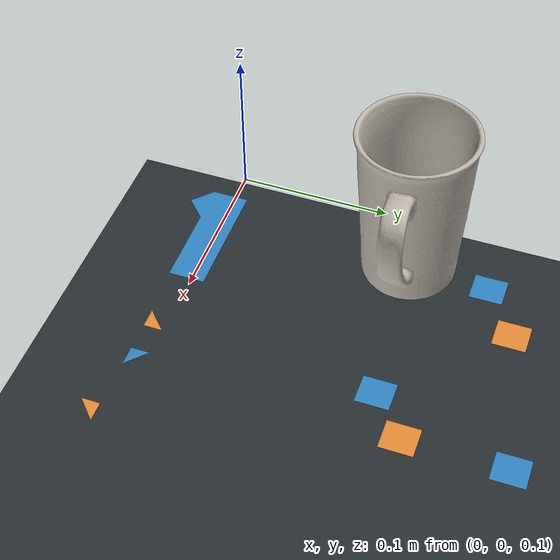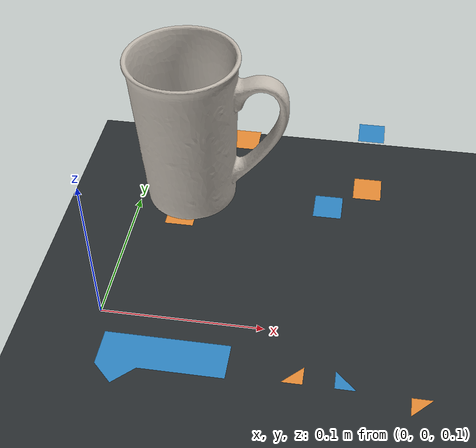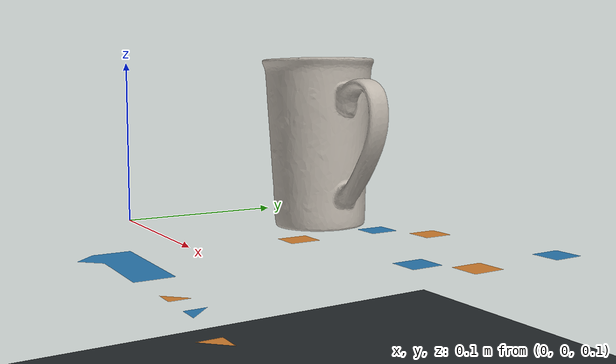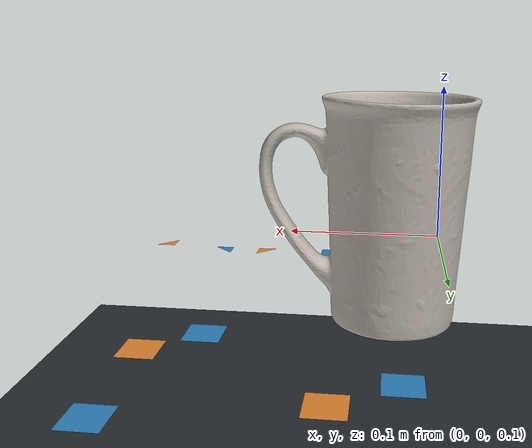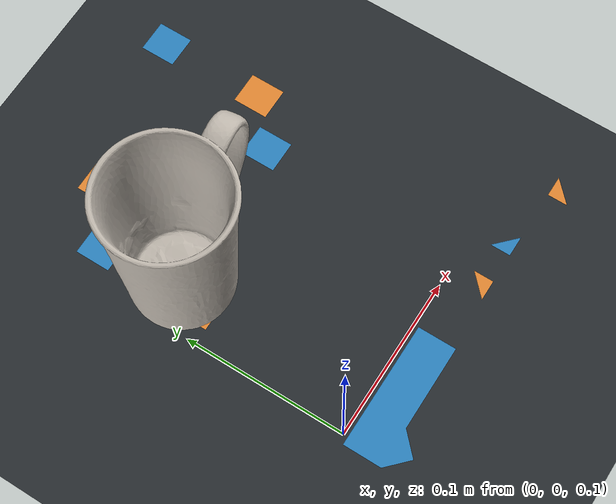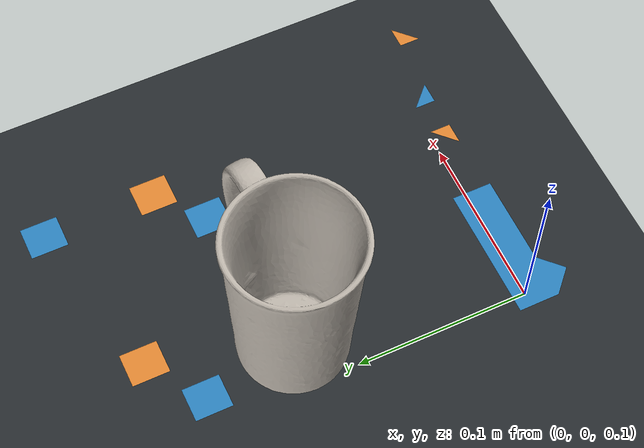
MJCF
<?xml version="1.0"?>
<mujoco model="three_finger_gripper_b_sdas">
  <compiler angle="radian" meshdir="" autolimits="true"/>
  <option timestep="0.002000000" integrator="RK4" gravity="0.0 0.0 0.0"/>
  <visual>
    <global offwidth="1280" offheight="900"/>
    <quality offsamples="8" shadowsize="4096"/>
    <headlight ambient="0.24 0.24 0.26" diffuse="0.65 0.65 0.62" specular="0.25 0.25 0.25"/>
    <rgba haze="0.86 0.88 0.90 1"/>
  </visual>
  <asset>
    <material name="base_mat" rgba="0.16 0.18 0.19 1"/>
    <material name="hand_mat" rgba="0.18 0.52 0.76 1" specular="0.25" shininess="0.25"/>
    <material name="hand_alt" rgba="0.90 0.54 0.20 1" specular="0.25" shininess="0.25"/>
    <material name="mat_gui_scanned_mug" rgba="0.8 0.72 0.58 1" specular="0.25" shininess="0.25"/>
    <texture type="2d" name="gui_scanned_mug__texture" file="E:/SGLab/cable-driven/synergy_hand_sim/assets/mujoco_scanned_objects/ACE_Coffee_Mug_Kristen_16_oz_cup/texture.png" />
    <material name="gui_scanned_mug__material_0" texture="gui_scanned_mug__texture" specular="0.5" shininess="0.5" />
    <mesh name="gui_scanned_mug__model" file="E:/SGLab/cable-driven/synergy_hand_sim/assets/mujoco_scanned_objects/ACE_Coffee_Mug_Kristen_16_oz_cup/model.obj" scale="0.85 0.85 0.85" />
    <mesh name="gui_scanned_mug__model_collision_0" file="E:/SGLab/cable-driven/synergy_hand_sim/assets/mujoco_scanned_objects/ACE_Coffee_Mug_Kristen_16_oz_cup/model_collision_0.obj" scale="0.85 0.85 0.85" />
    <mesh name="gui_scanned_mug__model_collision_1" file="E:/SGLab/cable-driven/synergy_hand_sim/assets/mujoco_scanned_objects/ACE_Coffee_Mug_Kristen_16_oz_cup/model_collision_1.obj" scale="0.85 0.85 0.85" />
    <mesh name="gui_scanned_mug__model_collision_2" file="E:/SGLab/cable-driven/synergy_hand_sim/assets/mujoco_scanned_objects/ACE_Coffee_Mug_Kristen_16_oz_cup/model_collision_2.obj" scale="0.85 0.85 0.85" />
    <mesh name="gui_scanned_mug__model_collision_3" file="E:/SGLab/cable-driven/synergy_hand_sim/assets/mujoco_scanned_objects/ACE_Coffee_Mug_Kristen_16_oz_cup/model_collision_3.obj" scale="0.85 0.85 0.85" />
    <mesh name="gui_scanned_mug__model_collision_4" file="E:/SGLab/cable-driven/synergy_hand_sim/assets/mujoco_scanned_objects/ACE_Coffee_Mug_Kristen_16_oz_cup/model_collision_4.obj" scale="0.85 0.85 0.85" />
    <mesh name="gui_scanned_mug__model_collision_5" file="E:/SGLab/cable-driven/synergy_hand_sim/assets/mujoco_scanned_objects/ACE_Coffee_Mug_Kristen_16_oz_cup/model_collision_5.obj" scale="0.85 0.85 0.85" />
    <mesh name="gui_scanned_mug__model_collision_6" file="E:/SGLab/cable-driven/synergy_hand_sim/assets/mujoco_scanned_objects/ACE_Coffee_Mug_Kristen_16_oz_cup/model_collision_6.obj" scale="0.85 0.85 0.85" />
    <mesh name="gui_scanned_mug__model_collision_7" file="E:/SGLab/cable-driven/synergy_hand_sim/assets/mujoco_scanned_objects/ACE_Coffee_Mug_Kristen_16_oz_cup/model_collision_7.obj" scale="0.85 0.85 0.85" />
    <mesh name="gui_scanned_mug__model_collision_8" file="E:/SGLab/cable-driven/synergy_hand_sim/assets/mujoco_scanned_objects/ACE_Coffee_Mug_Kristen_16_oz_cup/model_collision_8.obj" scale="0.85 0.85 0.85" />
    <mesh name="gui_scanned_mug__model_collision_9" file="E:/SGLab/cable-driven/synergy_hand_sim/assets/mujoco_scanned_objects/ACE_Coffee_Mug_Kristen_16_oz_cup/model_collision_9.obj" scale="0.85 0.85 0.85" />
    <mesh name="gui_scanned_mug__model_collision_10" file="E:/SGLab/cable-driven/synergy_hand_sim/assets/mujoco_scanned_objects/ACE_Coffee_Mug_Kristen_16_oz_cup/model_collision_10.obj" scale="0.85 0.85 0.85" />
    <mesh name="gui_scanned_mug__model_collision_11" file="E:/SGLab/cable-driven/synergy_hand_sim/assets/mujoco_scanned_objects/ACE_Coffee_Mug_Kristen_16_oz_cup/model_collision_11.obj" scale="0.85 0.85 0.85" />
    <mesh name="gui_scanned_mug__model_collision_12" file="E:/SGLab/cable-driven/synergy_hand_sim/assets/mujoco_scanned_objects/ACE_Coffee_Mug_Kristen_16_oz_cup/model_collision_12.obj" scale="0.85 0.85 0.85" />
    <mesh name="gui_scanned_mug__model_collision_13" file="E:/SGLab/cable-driven/synergy_hand_sim/assets/mujoco_scanned_objects/ACE_Coffee_Mug_Kristen_16_oz_cup/model_collision_13.obj" scale="0.85 0.85 0.85" />
    <mesh name="gui_scanned_mug__model_collision_14" file="E:/SGLab/cable-driven/synergy_hand_sim/assets/mujoco_scanned_objects/ACE_Coffee_Mug_Kristen_16_oz_cup/model_collision_14.obj" scale="0.85 0.85 0.85" />
    <mesh name="gui_scanned_mug__model_collision_15" file="E:/SGLab/cable-driven/synergy_hand_sim/assets/mujoco_scanned_objects/ACE_Coffee_Mug_Kristen_16_oz_cup/model_collision_15.obj" scale="0.85 0.85 0.85" />
    <mesh name="gui_scanned_mug__model_collision_16" file="E:/SGLab/cable-driven/synergy_hand_sim/assets/mujoco_scanned_objects/ACE_Coffee_Mug_Kristen_16_oz_cup/model_collision_16.obj" scale="0.85 0.85 0.85" />
    <mesh name="gui_scanned_mug__model_collision_17" file="E:/SGLab/cable-driven/synergy_hand_sim/assets/mujoco_scanned_objects/ACE_Coffee_Mug_Kristen_16_oz_cup/model_collision_17.obj" scale="0.85 0.85 0.85" />
    <mesh name="gui_scanned_mug__model_collision_18" file="E:/SGLab/cable-driven/synergy_hand_sim/assets/mujoco_scanned_objects/ACE_Coffee_Mug_Kristen_16_oz_cup/model_collision_18.obj" scale="0.85 0.85 0.85" />
    <mesh name="gui_scanned_mug__model_collision_19" file="E:/SGLab/cable-driven/synergy_hand_sim/assets/mujoco_scanned_objects/ACE_Coffee_Mug_Kristen_16_oz_cup/model_collision_19.obj" scale="0.85 0.85 0.85" />
    <mesh name="gui_scanned_mug__model_collision_20" file="E:/SGLab/cable-driven/synergy_hand_sim/assets/mujoco_scanned_objects/ACE_Coffee_Mug_Kristen_16_oz_cup/model_collision_20.obj" scale="0.85 0.85 0.85" />
    <mesh name="gui_scanned_mug__model_collision_21" file="E:/SGLab/cable-driven/synergy_hand_sim/assets/mujoco_scanned_objects/ACE_Coffee_Mug_Kristen_16_oz_cup/model_collision_21.obj" scale="0.85 0.85 0.85" />
    <mesh name="gui_scanned_mug__model_collision_22" file="E:/SGLab/cable-driven/synergy_hand_sim/assets/mujoco_scanned_objects/ACE_Coffee_Mug_Kristen_16_oz_cup/model_collision_22.obj" scale="0.85 0.85 0.85" />
    <mesh name="gui_scanned_mug__model_collision_23" file="E:/SGLab/cable-driven/synergy_hand_sim/assets/mujoco_scanned_objects/ACE_Coffee_Mug_Kristen_16_oz_cup/model_collision_23.obj" scale="0.85 0.85 0.85" />
    <mesh name="gui_scanned_mug__model_collision_24" file="E:/SGLab/cable-driven/synergy_hand_sim/assets/mujoco_scanned_objects/ACE_Coffee_Mug_Kristen_16_oz_cup/model_collision_24.obj" scale="0.85 0.85 0.85" />
    <mesh name="gui_scanned_mug__model_collision_25" file="E:/SGLab/cable-driven/synergy_hand_sim/assets/mujoco_scanned_objects/ACE_Coffee_Mug_Kristen_16_oz_cup/model_collision_25.obj" scale="0.85 0.85 0.85" />
    <mesh name="gui_scanned_mug__model_collision_26" file="E:/SGLab/cable-driven/synergy_hand_sim/assets/mujoco_scanned_objects/ACE_Coffee_Mug_Kristen_16_oz_cup/model_collision_26.obj" scale="0.85 0.85 0.85" />
    <mesh name="gui_scanned_mug__model_collision_27" file="E:/SGLab/cable-driven/synergy_hand_sim/assets/mujoco_scanned_objects/ACE_Coffee_Mug_Kristen_16_oz_cup/model_collision_27.obj" scale="0.85 0.85 0.85" />
    <mesh name="gui_scanned_mug__model_collision_28" file="E:/SGLab/cable-driven/synergy_hand_sim/assets/mujoco_scanned_objects/ACE_Coffee_Mug_Kristen_16_oz_cup/model_collision_28.obj" scale="0.85 0.85 0.85" />
    <mesh name="gui_scanned_mug__model_collision_29" file="E:/SGLab/cable-driven/synergy_hand_sim/assets/mujoco_scanned_objects/ACE_Coffee_Mug_Kristen_16_oz_cup/model_collision_29.obj" scale="0.85 0.85 0.85" />
    <mesh name="gui_scanned_mug__model_collision_30" file="E:/SGLab/cable-driven/synergy_hand_sim/assets/mujoco_scanned_objects/ACE_Coffee_Mug_Kristen_16_oz_cup/model_collision_30.obj" scale="0.85 0.85 0.85" />
    <mesh name="gui_scanned_mug__model_collision_31" file="E:/SGLab/cable-driven/synergy_hand_sim/assets/mujoco_scanned_objects/ACE_Coffee_Mug_Kristen_16_oz_cup/model_collision_31.obj" scale="0.85 0.85 0.85" />
    <mesh name="mesh_face_0" file="E:/SGLab/cable-driven/synergy_hand_sim/models/three_finger_gripper_b/meshes/face_0.stl" scale="0.001 0.001 0.001"/>
    <mesh name="mesh_face_1" file="E:/SGLab/cable-driven/synergy_hand_sim/models/three_finger_gripper_b/meshes/face_1.stl" scale="0.001 0.001 0.001"/>
    <mesh name="mesh_face_2" file="E:/SGLab/cable-driven/synergy_hand_sim/models/three_finger_gripper_b/meshes/face_2.stl" scale="0.001 0.001 0.001"/>
    <mesh name="mesh_face_3" file="E:/SGLab/cable-driven/synergy_hand_sim/models/three_finger_gripper_b/meshes/face_3.stl" scale="0.001 0.001 0.001"/>
    <mesh name="mesh_face_4" file="E:/SGLab/cable-driven/synergy_hand_sim/models/three_finger_gripper_b/meshes/face_4.stl" scale="0.001 0.001 0.001"/>
    <mesh name="mesh_face_5" file="E:/SGLab/cable-driven/synergy_hand_sim/models/three_finger_gripper_b/meshes/face_5.stl" scale="0.001 0.001 0.001"/>
    <mesh name="mesh_face_6" file="E:/SGLab/cable-driven/synergy_hand_sim/models/three_finger_gripper_b/meshes/face_6.stl" scale="0.001 0.001 0.001"/>
    <mesh name="mesh_face_7" file="E:/SGLab/cable-driven/synergy_hand_sim/models/three_finger_gripper_b/meshes/face_7.stl" scale="0.001 0.001 0.001"/>
    <mesh name="mesh_face_8" file="E:/SGLab/cable-driven/synergy_hand_sim/models/three_finger_gripper_b/meshes/face_8.stl" scale="0.001 0.001 0.001"/>
    <mesh name="mesh_face_9" file="E:/SGLab/cable-driven/synergy_hand_sim/models/three_finger_gripper_b/meshes/face_9.stl" scale="0.001 0.001 0.001"/>
  </asset>
  <worldbody>
    <light name="key" directional="true" pos="1.8 -2.4 3.0" dir="-1.8 2.4 -3.0" diffuse="0.78 0.75 0.68"/>
    <light name="fill" directional="true" pos="-2.0 1.5 2.0" dir="2.0 -1.5 -2.0" diffuse="0.35 0.42 0.50"/>
    <geom name="floor" type="plane" size="1.4 1.4 0.02" pos="0 0 -0.015" material="base_mat" contype="4" conaffinity="2" friction="1.1 0.01 0.0001" condim="3" margin="0.0002"/>
    <body name="face_0" pos="0 0 0.080000000">
      <inertial pos="0 0 0" mass="0.030000000" diaginertia="0.000080000 0.000080000 0.000080000"/>
      <geom name="geom_face_0" type="mesh" mesh="mesh_face_0" material="hand_mat" contype="1" conaffinity="2" friction="1.1 0.01 0.0001" condim="3" margin="0.0002"/>
      <body name="face_1" pos="0.015000000 0.100000000 0.000000000">
        <inertial pos="0 0 0" mass="0.030000000" diaginertia="0.000080000 0.000080000 0.000080000"/>
        <joint name="joint_0" type="hinge" pos="0 0 0" axis="1.000000000 0.000000000 0.000000000" range="-1.57 1.57" limited="true" stiffness="0" armature="0.000080000"/>
        <geom name="geom_face_1" type="mesh" mesh="mesh_face_1" material="hand_alt" contype="1" conaffinity="2" friction="1.1 0.01 0.0001" condim="3" margin="0.0002"/>
        <body name="face_2" pos="0.000000000 0.045000000 0.000000000">
          <inertial pos="0 0 0" mass="0.030000000" diaginertia="0.000080000 0.000080000 0.000080000"/>
          <joint name="joint_3" type="hinge" pos="0 0 0" axis="1.000000000 0.000000000 0.000000000" range="-1.57 1.57" limited="true" stiffness="0" armature="0.000080000"/>
          <geom name="geom_face_2" type="mesh" mesh="mesh_face_2" material="hand_mat" contype="1" conaffinity="2" friction="1.1 0.01 0.0001" condim="3" margin="0.0002"/>
          <body name="face_3" pos="0.000000000 0.045000000 0.000000000">
            <inertial pos="0 0 0" mass="0.030000000" diaginertia="0.000080000 0.000080000 0.000080000"/>
            <joint name="joint_4" type="hinge" pos="0 0 0" axis="1.000000000 0.000000000 0.000000000" range="-1.57 1.57" limited="true" stiffness="0" armature="0.000080000"/>
            <geom name="geom_face_3" type="mesh" mesh="mesh_face_3" material="hand_alt" contype="1" conaffinity="2" friction="1.1 0.01 0.0001" condim="3" margin="0.0002"/>
          </body>
        </body>
      </body>
      <body name="face_4" pos="0.085000000 0.100000000 0.000000000">
        <inertial pos="0 0 0" mass="0.030000000" diaginertia="0.000080000 0.000080000 0.000080000"/>
        <joint name="joint_1" type="hinge" pos="0 0 0" axis="1.000000000 0.000000000 0.000000000" range="-1.57 1.57" limited="true" stiffness="0" armature="0.000080000"/>
        <geom name="geom_face_4" type="mesh" mesh="mesh_face_4" material="hand_mat" contype="1" conaffinity="2" friction="1.1 0.01 0.0001" condim="3" margin="0.0002"/>
        <body name="face_5" pos="0.000000000 0.045000000 0.000000000">
          <inertial pos="0 0 0" mass="0.030000000" diaginertia="0.000080000 0.000080000 0.000080000"/>
          <joint name="joint_5" type="hinge" pos="0 0 0" axis="1.000000000 0.000000000 0.000000000" range="-1.57 1.57" limited="true" stiffness="0" armature="0.000080000"/>
          <geom name="geom_face_5" type="mesh" mesh="mesh_face_5" material="hand_alt" contype="1" conaffinity="2" friction="1.1 0.01 0.0001" condim="3" margin="0.0002"/>
          <body name="face_6" pos="0.000000000 0.045000000 0.000000000">
            <inertial pos="0 0 0" mass="0.030000000" diaginertia="0.000080000 0.000080000 0.000080000"/>
            <joint name="joint_6" type="hinge" pos="0 0 0" axis="1.000000000 0.000000000 0.000000000" range="-1.57 1.57" limited="true" stiffness="0" armature="0.000080000"/>
            <geom name="geom_face_6" type="mesh" mesh="mesh_face_6" material="hand_mat" contype="1" conaffinity="2" friction="1.1 0.01 0.0001" condim="3" margin="0.0002"/>
          </body>
        </body>
      </body>
      <body name="face_7" pos="0.100000000 0.015000000 0.000000000">
        <inertial pos="0 0 0" mass="0.030000000" diaginertia="0.000080000 0.000080000 0.000080000"/>
        <joint name="joint_2" type="hinge" pos="0 0 0" axis="0.000000000 -1.000000000 0.000000000" range="-1.57 1.57" limited="true" stiffness="0" armature="0.000080000"/>
        <geom name="geom_face_7" type="mesh" mesh="mesh_face_7" material="hand_alt" contype="1" conaffinity="2" friction="1.1 0.01 0.0001" condim="3" margin="0.0002"/>
        <body name="face_8" pos="0.045000000 0.000000000 0.000000000">
          <inertial pos="0 0 0" mass="0.030000000" diaginertia="0.000080000 0.000080000 0.000080000"/>
          <joint name="joint_7" type="hinge" pos="0 0 0" axis="-0.000000000 -1.000000000 0.000000000" range="-1.57 1.57" limited="true" stiffness="0" armature="0.000080000"/>
          <geom name="geom_face_8" type="mesh" mesh="mesh_face_8" material="hand_mat" contype="1" conaffinity="2" friction="1.1 0.01 0.0001" condim="3" margin="0.0002"/>
          <body name="face_9" pos="0.045000000 0.000000000 0.000000000">
            <inertial pos="0 0 0" mass="0.030000000" diaginertia="0.000080000 0.000080000 0.000080000"/>
            <joint name="joint_8" type="hinge" pos="0 0 0" axis="-0.000000000 -1.000000000 0.000000000" range="-1.57 1.57" limited="true" stiffness="0" armature="0.000080000"/>
            <geom name="geom_face_9" type="mesh" mesh="mesh_face_9" material="hand_alt" contype="1" conaffinity="2" friction="1.1 0.01 0.0001" condim="3" margin="0.0002"/>
          </body>
        </body>
      </body>
    </body>
    <body name="gui_scanned_mug" pos="0.045 0.125 0.09" quat="1 0 0 0">
      <freejoint name="gui_scanned_mug_free"/>
      <inertial pos="0 0 0" mass="0.5" diaginertia="3.6125e-05 3.6125e-05 3.6125e-05"/>
      <geom material="gui_scanned_mug__material_0" mesh="gui_scanned_mug__model" type="mesh" group="2" name="geom_gui_scanned_mug_0" contype="0" conaffinity="0" />
      <geom mesh="gui_scanned_mug__model_collision_0" type="mesh" group="3" name="geom_gui_scanned_mug_1" contype="2" conaffinity="5" friction="1.1 0.01 0.0001" condim="3" margin="0.0002" />
      <geom mesh="gui_scanned_mug__model_collision_1" type="mesh" group="3" name="geom_gui_scanned_mug_2" contype="2" conaffinity="5" friction="1.1 0.01 0.0001" condim="3" margin="0.0002" />
      <geom mesh="gui_scanned_mug__model_collision_2" type="mesh" group="3" name="geom_gui_scanned_mug_3" contype="2" conaffinity="5" friction="1.1 0.01 0.0001" condim="3" margin="0.0002" />
      <geom mesh="gui_scanned_mug__model_collision_3" type="mesh" group="3" name="geom_gui_scanned_mug_4" contype="2" conaffinity="5" friction="1.1 0.01 0.0001" condim="3" margin="0.0002" />
      <geom mesh="gui_scanned_mug__model_collision_4" type="mesh" group="3" name="geom_gui_scanned_mug_5" contype="2" conaffinity="5" friction="1.1 0.01 0.0001" condim="3" margin="0.0002" />
      <geom mesh="gui_scanned_mug__model_collision_5" type="mesh" group="3" name="geom_gui_scanned_mug_6" contype="2" conaffinity="5" friction="1.1 0.01 0.0001" condim="3" margin="0.0002" />
      <geom mesh="gui_scanned_mug__model_collision_6" type="mesh" group="3" name="geom_gui_scanned_mug_7" contype="2" conaffinity="5" friction="1.1 0.01 0.0001" condim="3" margin="0.0002" />
      <geom mesh="gui_scanned_mug__model_collision_7" type="mesh" group="3" name="geom_gui_scanned_mug_8" contype="2" conaffinity="5" friction="1.1 0.01 0.0001" condim="3" margin="0.0002" />
      <geom mesh="gui_scanned_mug__model_collision_8" type="mesh" group="3" name="geom_gui_scanned_mug_9" contype="2" conaffinity="5" friction="1.1 0.01 0.0001" condim="3" margin="0.0002" />
      <geom mesh="gui_scanned_mug__model_collision_9" type="mesh" group="3" name="geom_gui_scanned_mug_10" contype="2" conaffinity="5" friction="1.1 0.01 0.0001" condim="3" margin="0.0002" />
      <geom mesh="gui_scanned_mug__model_collision_10" type="mesh" group="3" name="geom_gui_scanned_mug_11" contype="2" conaffinity="5" friction="1.1 0.01 0.0001" condim="3" margin="0.0002" />
      <geom mesh="gui_scanned_mug__model_collision_11" type="mesh" group="3" name="geom_gui_scanned_mug_12" contype="2" conaffinity="5" friction="1.1 0.01 0.0001" condim="3" margin="0.0002" />
      <geom mesh="gui_scanned_mug__model_collision_12" type="mesh" group="3" name="geom_gui_scanned_mug_13" contype="2" conaffinity="5" friction="1.1 0.01 0.0001" condim="3" margin="0.0002" />
      <geom mesh="gui_scanned_mug__model_collision_13" type="mesh" group="3" name="geom_gui_scanned_mug_14" contype="2" conaffinity="5" friction="1.1 0.01 0.0001" condim="3" margin="0.0002" />
      <geom mesh="gui_scanned_mug__model_collision_14" type="mesh" group="3" name="geom_gui_scanned_mug_15" contype="2" conaffinity="5" friction="1.1 0.01 0.0001" condim="3" margin="0.0002" />
      <geom mesh="gui_scanned_mug__model_collision_15" type="mesh" group="3" name="geom_gui_scanned_mug_16" contype="2" conaffinity="5" friction="1.1 0.01 0.0001" condim="3" margin="0.0002" />
      <geom mesh="gui_scanned_mug__model_collision_16" type="mesh" group="3" name="geom_gui_scanned_mug_17" contype="2" conaffinity="5" friction="1.1 0.01 0.0001" condim="3" margin="0.0002" />
      <geom mesh="gui_scanned_mug__model_collision_17" type="mesh" group="3" name="geom_gui_scanned_mug_18" contype="2" conaffinity="5" friction="1.1 0.01 0.0001" condim="3" margin="0.0002" />
      <geom mesh="gui_scanned_mug__model_collision_18" type="mesh" group="3" name="geom_gui_scanned_mug_19" contype="2" conaffinity="5" friction="1.1 0.01 0.0001" condim="3" margin="0.0002" />
      <geom mesh="gui_scanned_mug__model_collision_19" type="mesh" group="3" name="geom_gui_scanned_mug_20" contype="2" conaffinity="5" friction="1.1 0.01 0.0001" condim="3" margin="0.0002" />
      <geom mesh="gui_scanned_mug__model_collision_20" type="mesh" group="3" name="geom_gui_scanned_mug_21" contype="2" conaffinity="5" friction="1.1 0.01 0.0001" condim="3" margin="0.0002" />
      <geom mesh="gui_scanned_mug__model_collision_21" type="mesh" group="3" name="geom_gui_scanned_mug_22" contype="2" conaffinity="5" friction="1.1 0.01 0.0001" condim="3" margin="0.0002" />
      <geom mesh="gui_scanned_mug__model_collision_22" type="mesh" group="3" name="geom_gui_scanned_mug_23" contype="2" conaffinity="5" friction="1.1 0.01 0.0001" condim="3" margin="0.0002" />
      <geom mesh="gui_scanned_mug__model_collision_23" type="mesh" group="3" name="geom_gui_scanned_mug_24" contype="2" conaffinity="5" friction="1.1 0.01 0.0001" condim="3" margin="0.0002" />
      <geom mesh="gui_scanned_mug__model_collision_24" type="mesh" group="3" name="geom_gui_scanned_mug_25" contype="2" conaffinity="5" friction="1.1 0.01 0.0001" condim="3" margin="0.0002" />
      <geom mesh="gui_scanned_mug__model_collision_25" type="mesh" group="3" name="geom_gui_scanned_mug_26" contype="2" conaffinity="5" friction="1.1 0.01 0.0001" condim="3" margin="0.0002" />
      <geom mesh="gui_scanned_mug__model_collision_26" type="mesh" group="3" name="geom_gui_scanned_mug_27" contype="2" conaffinity="5" friction="1.1 0.01 0.0001" condim="3" margin="0.0002" />
      <geom mesh="gui_scanned_mug__model_collision_27" type="mesh" group="3" name="geom_gui_scanned_mug_28" contype="2" conaffinity="5" friction="1.1 0.01 0.0001" condim="3" margin="0.0002" />
      <geom mesh="gui_scanned_mug__model_collision_28" type="mesh" group="3" name="geom_gui_scanned_mug_29" contype="2" conaffinity="5" friction="1.1 0.01 0.0001" condim="3" margin="0.0002" />
      <geom mesh="gui_scanned_mug__model_collision_29" type="mesh" group="3" name="geom_gui_scanned_mug_30" contype="2" conaffinity="5" friction="1.1 0.01 0.0001" condim="3" margin="0.0002" />
      <geom mesh="gui_scanned_mug__model_collision_30" type="mesh" group="3" name="geom_gui_scanned_mug_31" contype="2" conaffinity="5" friction="1.1 0.01 0.0001" condim="3" margin="0.0002" />
      <geom mesh="gui_scanned_mug__model_collision_31" type="mesh" group="3" name="geom_gui_scanned_mug_32" contype="2" conaffinity="5" friction="1.1 0.01 0.0001" condim="3" margin="0.0002" />
    </body>
  </worldbody>
</mujoco>
